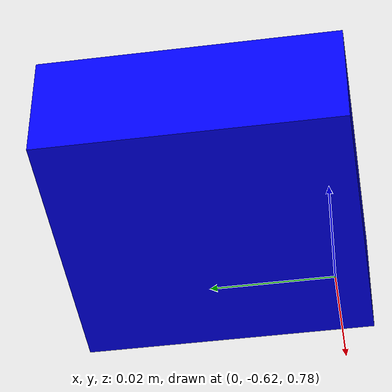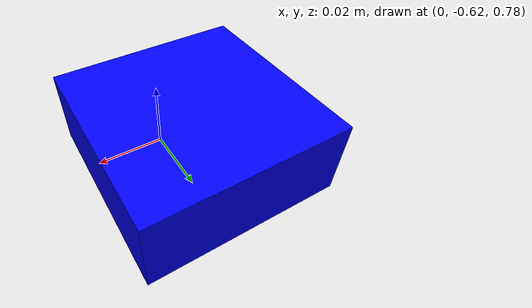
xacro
<?xml version="1.0"?>
<robot name="world_camera" xmlns:xacro="http://www.ros.org/wiki/xacro">

  <link name="world" />

  <link name="waste_camera_link">
    <visual>
      <geometry>
        <box size="0.02 0.05 0.05"/>
      </geometry>
       <material name="blue">
        <color rgba="0 0 1 1"/>
      </material>
    </visual>
  </link>

  <joint name="waste_camera_joint" type="fixed">
    <parent link="world"/>
    <child link="waste_camera_link"/>
    <origin xyz="0.0 -0.60 0.8" rpy="0 1.5707 0"/>
  </joint>

  <gazebo reference="waste_camera_link">
    <sensor type="camera" name="waste_camera_sensor">
      <update_rate>30.0</update_rate>
      <camera name="head">
        <horizontal_fov>1.39626</horizontal_fov>
        <image>
            <width>800</width>
            <height>800</height>
            <format>R8G8B8</format>
        </image>
        <clip>
            <near>0.02</near>
            <far>300</far>
        </clip>
      </camera>
      <plugin name="camera_controller" filename="libgazebo_ros_camera.so">
        <alwaysOn>true</alwaysOn>
        <updateRate>0.0</updateRate>
        <cameraName>waste_camera</cameraName>
        <imageTopicName>image_raw</imageTopicName>
        <cameraInfoTopicName>camera_info</cameraInfoTopicName>
        <frameName>waste_camera_link</frameName>
      </plugin>
    </sensor>
  </gazebo>

</robot>
